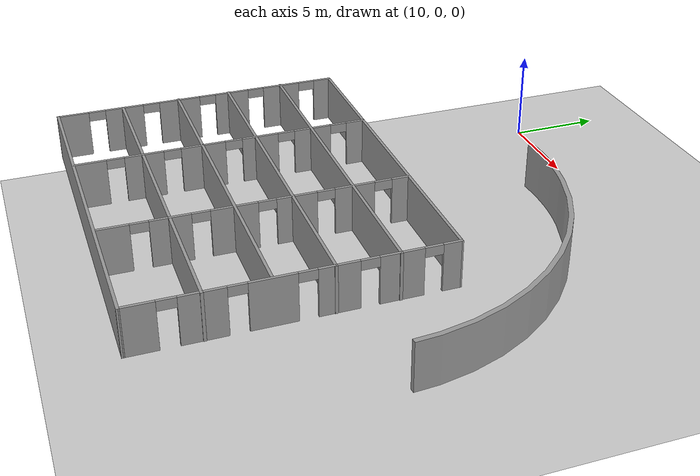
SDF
<sdf version="1.6">
 <world name="default">
  <model name="ground_plane">
   <static>1</static>
   <link name="link">
    <collision name="collision">
     <geometry><plane><normal>0 0 1</normal><size>100 100</size></plane></geometry>
     <surface>
      <contact><collide_bitmask>65535</collide_bitmask></contact>
      <friction><ode><mu>100</mu><mu2>50</mu2></ode></friction>
     </surface>
    </collision>
    <visual name="visual">
     <cast_shadows>0</cast_shadows>
     <geometry><plane><normal>0 0 1</normal><size>100 100</size></plane></geometry>
     <material>
      <script><uri>file://media/materials/scripts/gazebo.material</uri><name>Gazebo/Grey</name></script>
     </material>
    </visual>
   </link>
  </model>
  <model name="5x3_Cubicles_0">
   <pose>18.3768 -19.8709 2.63141 0 -0 0</pose>
   <link name="Wall_0">
    <pose>-9.39351 -0 0 0 -0 -1.57435</pose>
    <visual name="Wall_0_Visual_0">
     <pose>-7.27295 0 1.25 0 -0 0</pose>
     <geometry><box><size>1.03181 0.15 2.5</size></box></geometry>
     <material>
      <script><uri>file://media/materials/scripts/gazebo.material</uri><name>Gazebo/Grey</name></script>
      <ambient>1 1 1 1</ambient>
     </material>
     <meta><layer>0</layer></meta>
    </visual>
    <collision name="Wall_0_Collision_0">
     <geometry><box><size>1.03181 0.15 2.5</size></box></geometry>
     <pose>-7.27295 0 1.25 0 -0 0</pose>
    </collision>
    <visual name="Wall_0_Visual_1">
     <pose>-4.8086 0 1.25 0 -0 0</pose>
     <geometry><box><size>2.09689 0.15 2.5</size></box></geometry>
     <material>
      <script><uri>file://media/materials/scripts/gazebo.material</uri><name>Gazebo/Grey</name></script>
      <ambient>1 1 1 1</ambient>
     </material>
     <meta><layer>0</layer></meta>
    </visual>
    <collision name="Wall_0_Collision_1">
     <geometry><box><size>2.09689 0.15 2.5</size></box></geometry>
     <pose>-4.8086 0 1.25 0 -0 0</pose>
    </collision>
    <visual name="Wall_0_Visual_2">
     <pose>-1.91379 0 1.25 0 -0 0</pose>
     <geometry><box><size>1.89272 0.15 2.5</size></box></geometry>
     <material>
      <script><uri>file://media/materials/scripts/gazebo.material</uri><name>Gazebo/Grey</name></script>
      <ambient>1 1 1 1</ambient>
     </material>
     <meta><layer>0</layer></meta>
    </visual>
    <collision name="Wall_0_Collision_2">
     <geometry><box><size>1.89272 0.15 2.5</size></box></geometry>
     <pose>-1.91379 0 1.25 0 -0 0</pose>
    </collision>
    <visual name="Wall_0_Visual_3">
     <pose>1.06918 0 1.25 0 -0 0</pose>
     <geometry><box><size>2.27323 0.15 2.5</size></box></geometry>
     <material>
      <script><uri>file://media/materials/scripts/gazebo.material</uri><name>Gazebo/Grey</name></script>
      <ambient>1 1 1 1</ambient>
     </material>
     <meta><layer>0</layer></meta>
    </visual>
    <collision name="Wall_0_Collision_3">
     <geometry><box><size>2.27323 0.15 2.5</size></box></geometry>
     <pose>1.06918 0 1.25 0 -0 0</pose>
    </collision>
    <visual name="Wall_0_Visual_4">
     <pose>4.14705 0 1.25 0 -0 0</pose>
     <geometry><box><size>2.0825 0.15 2.5</size></box></geometry>
     <material>
      <script><uri>file://media/materials/scripts/gazebo.material</uri><name>Gazebo/Grey</name></script>
      <ambient>1 1 1 1</ambient>
     </material>
     <meta><layer>0</layer></meta>
    </visual>
    <collision name="Wall_0_Collision_4">
     <geometry><box><size>2.0825 0.15 2.5</size></box></geometry>
     <pose>4.14705 0 1.25 0 -0 0</pose>
    </collision>
    <visual name="Wall_0_Visual_5">
     <pose>6.93858 0 1.25 0 -0 0</pose>
     <geometry><box><size>1.70057 0.15 2.5</size></box></geometry>
     <material>
      <script><uri>file://media/materials/scripts/gazebo.material</uri><name>Gazebo/Grey</name></script>
      <ambient>1 1 1 1</ambient>
     </material>
     <meta><layer>0</layer></meta>
    </visual>
    <collision name="Wall_0_Collision_5">
     <geometry><box><size>1.70057 0.15 2.5</size></box></geometry>
     <pose>6.93858 0 1.25 0 -0 0</pose>
    </collision>
    <visual name="Wall_0_Visual_6">
     <pose>-6.30705 0 2.25 0 -0 0</pose>
     <geometry><box><size>0.9 0.15 0.5</size></box></geometry>
     <material>
      <script><uri>file://media/materials/scripts/gazebo.material</uri><name>Gazebo/Grey</name></script>
      <ambient>1 1 1 1</ambient>
     </material>
     <meta><layer>0</layer></meta>
    </visual>
    <collision name="Wall_0_Collision_6">
     <geometry><box><size>0.9 0.15 0.5</size></box></geometry>
     <pose>-6.30705 0 2.25 0 -0 0</pose>
    </collision>
    <visual name="Wall_0_Visual_7">
     <pose>-3.31016 0 2.25 0 -0 0</pose>
     <geometry><box><size>0.9 0.15 0.5</size></box></geometry>
     <material>
      <script><uri>file://media/materials/scripts/gazebo.material</uri><name>Gazebo/Grey</name></script>
      <ambient>1 1 1 1</ambient>
     </material>
     <meta><layer>0</layer></meta>
    </visual>
    <collision name="Wall_0_Collision_7">
     <geometry><box><size>0.9 0.15 0.5</size></box></geometry>
     <pose>-3.31016 0 2.25 0 -0 0</pose>
    </collision>
    <visual name="Wall_0_Visual_8">
     <pose>-0.517433 0 2.25 0 -0 0</pose>
     <geometry><box><size>0.9 0.15 0.5</size></box></geometry>
     <material>
      <script><uri>file://media/materials/scripts/gazebo.material</uri><name>Gazebo/Grey</name></script>
      <ambient>1 1 1 1</ambient>
     </material>
     <meta><layer>0</layer></meta>
    </visual>
    <collision name="Wall_0_Collision_8">
     <geometry><box><size>0.9 0.15 0.5</size></box></geometry>
     <pose>-0.517433 0 2.25 0 -0 0</pose>
    </collision>
    <visual name="Wall_0_Visual_9">
     <pose>2.6558 0 2.25 0 -0 0</pose>
     <geometry><box><size>0.9 0.15 0.5</size></box></geometry>
     <material>
      <script><uri>file://media/materials/scripts/gazebo.material</uri><name>Gazebo/Grey</name></script>
      <ambient>1 1 1 1</ambient>
     </material>
     <meta><layer>0</layer></meta>
    </visual>
    <collision name="Wall_0_Collision_9">
     <geometry><box><size>0.9 0.15 0.5</size></box></geometry>
     <pose>2.6558 0 2.25 0 -0 0</pose>
    </collision>
    <visual name="Wall_0_Visual_10">
     <pose>5.63829 0 2.25 0 -0 0</pose>
     <geometry><box><size>0.9 0.15 0.5</size></box></geometry>
     <material>
      <script><uri>file://media/materials/scripts/gazebo.material</uri><name>Gazebo/Grey</name></script>
      <ambient>1 1 1 1</ambient>
     </material>
     <meta><layer>0</layer></meta>
    </visual>
    <collision name="Wall_0_Collision_10">
     <geometry><box><size>0.9 0.15 0.5</size></box></geometry>
     <pose>5.63829 0 2.25 0 -0 0</pose>
    </collision>
   </link>
   <link name="Wall_10">
    <collision name="Wall_10_Collision">
     <geometry><box><size>19 0.15 2.5</size></box></geometry>
     <pose>0 0 1.25 0 -0 0</pose>
    </collision>
    <visual name="Wall_10_Visual">
     <pose>0 0 1.25 0 -0 0</pose>
     <geometry><box><size>19 0.15 2.5</size></box></geometry>
     <material>
      <script><uri>file://media/materials/scripts/gazebo.material</uri><name>Gazebo/Grey</name></script>
      <ambient>1 1 1 1</ambient>
     </material>
     <meta><layer>0</layer></meta>
    </visual>
    <pose>-0 1.73972 0 0 -0 0</pose>
   </link>
   <link name="Wall_12">
    <collision name="Wall_12_Collision">
     <geometry><box><size>19 0.15 2.5</size></box></geometry>
     <pose>0 0 1.25 0 -0 0</pose>
    </collision>
    <visual name="Wall_12_Visual">
     <pose>0 0 1.25 0 -0 0</pose>
     <geometry><box><size>19 0.15 2.5</size></box></geometry>
     <material>
      <script><uri>file://media/materials/scripts/gazebo.material</uri><name>Gazebo/Grey</name></script>
      <ambient>1 1 1 1</ambient>
     </material>
     <meta><layer>0</layer></meta>
    </visual>
    <pose>0.002757 4.78648 0 0 -0 0</pose>
   </link>
   <link name="Wall_14">
    <pose>3.03244 -0.038205 0 0 -0 -1.57332</pose>
    <visual name="Wall_14_Visual_0">
     <pose>-7.27661 0 1.25 0 -0 0</pose>
     <geometry><box><size>0.887786 0.15 2.5</size></box></geometry>
     <material>
      <script><uri>file://media/materials/scripts/gazebo.material</uri><name>Gazebo/Grey</name></script>
      <ambient>1 1 1 1</ambient>
     </material>
     <meta><layer>0</layer></meta>
    </visual>
    <collision name="Wall_14_Collision_0">
     <geometry><box><size>0.887786 0.15 2.5</size></box></geometry>
     <pose>-7.27661 0 1.25 0 -0 0</pose>
    </collision>
    <visual name="Wall_14_Visual_1">
     <pose>-4.91212 0 1.25 0 -0 0</pose>
     <geometry><box><size>2.04118 0.15 2.5</size></box></geometry>
     <material>
      <script><uri>file://media/materials/scripts/gazebo.material</uri><name>Gazebo/Grey</name></script>
      <ambient>1 1 1 1</ambient>
     </material>
     <meta><layer>0</layer></meta>
    </visual>
    <collision name="Wall_14_Collision_1">
     <geometry><box><size>2.04118 0.15 2.5</size></box></geometry>
     <pose>-4.91212 0 1.25 0 -0 0</pose>
    </collision>
    <visual name="Wall_14_Visual_2">
     <pose>-1.97726 0 1.25 0 -0 0</pose>
     <geometry><box><size>2.02854 0.15 2.5</size></box></geometry>
     <material>
      <script><uri>file://media/materials/scripts/gazebo.material</uri><name>Gazebo/Grey</name></script>
      <ambient>1 1 1 1</ambient>
     </material>
     <meta><layer>0</layer></meta>
    </visual>
    <collision name="Wall_14_Collision_2">
     <geometry><box><size>2.02854 0.15 2.5</size></box></geometry>
     <pose>-1.97726 0 1.25 0 -0 0</pose>
    </collision>
    <visual name="Wall_14_Visual_3">
     <pose>1.09454 0 1.25 0 -0 0</pose>
     <geometry><box><size>2.31505 0.15 2.5</size></box></geometry>
     <material>
      <script><uri>file://media/materials/scripts/gazebo.material</uri><name>Gazebo/Grey</name></script>
      <ambient>1 1 1 1</ambient>
     </material>
     <meta><layer>0</layer></meta>
    </visual>
    <collision name="Wall_14_Collision_3">
     <geometry><box><size>2.31505 0.15 2.5</size></box></geometry>
     <pose>1.09454 0 1.25 0 -0 0</pose>
    </collision>
    <visual name="Wall_14_Visual_4">
     <pose>4.15071 0 1.25 0 -0 0</pose>
     <geometry><box><size>1.9973 0.15 2.5</size></box></geometry>
     <material>
      <script><uri>file://media/materials/scripts/gazebo.material</uri><name>Gazebo/Grey</name></script>
      <ambient>1 1 1 1</ambient>
     </material>
     <meta><layer>0</layer></meta>
    </visual>
    <collision name="Wall_14_Collision_4">
     <geometry><box><size>1.9973 0.15 2.5</size></box></geometry>
     <pose>4.15071 0 1.25 0 -0 0</pose>
    </collision>
    <visual name="Wall_14_Visual_5">
     <pose>6.88493 0 1.25 0 -0 0</pose>
     <geometry><box><size>1.67114 0.15 2.5</size></box></geometry>
     <material>
      <script><uri>file://media/materials/scripts/gazebo.material</uri><name>Gazebo/Grey</name></script>
      <ambient>1 1 1 1</ambient>
     </material>
     <meta><layer>0</layer></meta>
    </visual>
    <collision name="Wall_14_Collision_5">
     <geometry><box><size>1.67114 0.15 2.5</size></box></geometry>
     <pose>6.88493 0 1.25 0 -0 0</pose>
    </collision>
    <visual name="Wall_14_Visual_6">
     <pose>-6.38271 0 2.25 0 -0 0</pose>
     <geometry><box><size>0.9 0.15 0.5</size></box></geometry>
     <material>
      <script><uri>file://media/materials/scripts/gazebo.material</uri><name>Gazebo/Grey</name></script>
      <ambient>1 1 1 1</ambient>
     </material>
     <meta><layer>0</layer></meta>
    </visual>
    <collision name="Wall_14_Collision_6">
     <geometry><box><size>0.9 0.15 0.5</size></box></geometry>
     <pose>-6.38271 0 2.25 0 -0 0</pose>
    </collision>
    <visual name="Wall_14_Visual_7">
     <pose>-3.44153 0 2.25 0 -0 0</pose>
     <geometry><box><size>0.9 0.15 0.5</size></box></geometry>
     <material>
      <script><uri>file://media/materials/scripts/gazebo.material</uri><name>Gazebo/Grey</name></script>
      <ambient>1 1 1 1</ambient>
     </material>
     <meta><layer>0</layer></meta>
    </visual>
    <collision name="Wall_14_Collision_7">
     <geometry><box><size>0.9 0.15 0.5</size></box></geometry>
     <pose>-3.44153 0 2.25 0 -0 0</pose>
    </collision>
    <visual name="Wall_14_Visual_8">
     <pose>-0.512986 0 2.25 0 -0 0</pose>
     <geometry><box><size>0.9 0.15 0.5</size></box></geometry>
     <material>
      <script><uri>file://media/materials/scripts/gazebo.material</uri><name>Gazebo/Grey</name></script>
      <ambient>1 1 1 1</ambient>
     </material>
     <meta><layer>0</layer></meta>
    </visual>
    <collision name="Wall_14_Collision_8">
     <geometry><box><size>0.9 0.15 0.5</size></box></geometry>
     <pose>-0.512986 0 2.25 0 -0 0</pose>
    </collision>
    <visual name="Wall_14_Visual_9">
     <pose>2.70206 0 2.25 0 -0 0</pose>
     <geometry><box><size>0.9 0.15 0.5</size></box></geometry>
     <material>
      <script><uri>file://media/materials/scripts/gazebo.material</uri><name>Gazebo/Grey</name></script>
      <ambient>1 1 1 1</ambient>
     </material>
     <meta><layer>0</layer></meta>
    </visual>
    <collision name="Wall_14_Collision_9">
     <geometry><box><size>0.9 0.15 0.5</size></box></geometry>
     <pose>2.70206 0 2.25 0 -0 0</pose>
    </collision>
    <visual name="Wall_14_Visual_10">
     <pose>5.59936 0 2.25 0 -0 0</pose>
     <geometry><box><size>0.9 0.15 0.5</size></box></geometry>
     <material>
      <script><uri>file://media/materials/scripts/gazebo.material</uri><name>Gazebo/Grey</name></script>
      <ambient>1 1 1 1</ambient>
     </material>
     <meta><layer>0</layer></meta>
    </visual>
    <collision name="Wall_14_Collision_10">
     <geometry><box><size>0.9 0.15 0.5</size></box></geometry>
     <pose>5.59936 0 2.25 0 -0 0</pose>
    </collision>
   </link>
   <link name="Wall_16">
    <pose>-3.57321 -0.011645 0 0 -0 -1.5708</pose>
    <visual name="Wall_16_Visual_0">
     <pose>-7.25015 0 1.25 0 -0 0</pose>
     <geometry><box><size>0.999697 0.15 2.5</size></box></geometry>
     <material>
      <script><uri>file://media/materials/scripts/gazebo.material</uri><name>Gazebo/Grey</name></script>
      <ambient>1 1 1 1</ambient>
     </material>
     <meta><layer>0</layer></meta>
    </visual>
    <collision name="Wall_16_Collision_0">
     <geometry><box><size>0.999697 0.15 2.5</size></box></geometry>
     <pose>-7.25015 0 1.25 0 -0 0</pose>
    </collision>
    <visual name="Wall_16_Visual_1">
     <pose>-4.84832 0 1.25 0 -0 0</pose>
     <geometry><box><size>2.00397 0.15 2.5</size></box></geometry>
     <material>
      <script><uri>file://media/materials/scripts/gazebo.material</uri><name>Gazebo/Grey</name></script>
      <ambient>1 1 1 1</ambient>
     </material>
     <meta><layer>0</layer></meta>
    </visual>
    <collision name="Wall_16_Collision_1">
     <geometry><box><size>2.00397 0.15 2.5</size></box></geometry>
     <pose>-4.84832 0 1.25 0 -0 0</pose>
    </collision>
    <visual name="Wall_16_Visual_2">
     <pose>-1.97337 0 1.25 0 -0 0</pose>
     <geometry><box><size>1.94594 0.15 2.5</size></box></geometry>
     <material>
      <script><uri>file://media/materials/scripts/gazebo.material</uri><name>Gazebo/Grey</name></script>
      <ambient>1 1 1 1</ambient>
     </material>
     <meta><layer>0</layer></meta>
    </visual>
    <collision name="Wall_16_Collision_2">
     <geometry><box><size>1.94594 0.15 2.5</size></box></geometry>
     <pose>-1.97337 0 1.25 0 -0 0</pose>
    </collision>
    <visual name="Wall_16_Visual_3">
     <pose>1.06765 0 1.25 0 -0 0</pose>
     <geometry><box><size>2.3361 0.15 2.5</size></box></geometry>
     <material>
      <script><uri>file://media/materials/scripts/gazebo.material</uri><name>Gazebo/Grey</name></script>
      <ambient>1 1 1 1</ambient>
     </material>
     <meta><layer>0</layer></meta>
    </visual>
    <collision name="Wall_16_Collision_3">
     <geometry><box><size>2.3361 0.15 2.5</size></box></geometry>
     <pose>1.06765 0 1.25 0 -0 0</pose>
    </collision>
    <visual name="Wall_16_Visual_4">
     <pose>4.14512 0 1.25 0 -0 0</pose>
     <geometry><box><size>2.01884 0.15 2.5</size></box></geometry>
     <material>
      <script><uri>file://media/materials/scripts/gazebo.material</uri><name>Gazebo/Grey</name></script>
      <ambient>1 1 1 1</ambient>
     </material>
     <meta><layer>0</layer></meta>
    </visual>
    <collision name="Wall_16_Collision_4">
     <geometry><box><size>2.01884 0.15 2.5</size></box></geometry>
     <pose>4.14512 0 1.25 0 -0 0</pose>
    </collision>
    <visual name="Wall_16_Visual_5">
     <pose>6.90227 0 1.25 0 -0 0</pose>
     <geometry><box><size>1.69546 0.15 2.5</size></box></geometry>
     <material>
      <script><uri>file://media/materials/scripts/gazebo.material</uri><name>Gazebo/Grey</name></script>
      <ambient>1 1 1 1</ambient>
     </material>
     <meta><layer>0</layer></meta>
    </visual>
    <collision name="Wall_16_Collision_5">
     <geometry><box><size>1.69546 0.15 2.5</size></box></geometry>
     <pose>6.90227 0 1.25 0 -0 0</pose>
    </collision>
    <visual name="Wall_16_Visual_6">
     <pose>-6.3003 0 2.25 0 -0 0</pose>
     <geometry><box><size>0.9 0.15 0.5</size></box></geometry>
     <material>
      <script><uri>file://media/materials/scripts/gazebo.material</uri><name>Gazebo/Grey</name></script>
      <ambient>1 1 1 1</ambient>
     </material>
     <meta><layer>0</layer></meta>
    </visual>
    <collision name="Wall_16_Collision_6">
     <geometry><box><size>0.9 0.15 0.5</size></box></geometry>
     <pose>-6.3003 0 2.25 0 -0 0</pose>
    </collision>
    <visual name="Wall_16_Visual_7">
     <pose>-3.39634 0 2.25 0 -0 0</pose>
     <geometry><box><size>0.9 0.15 0.5</size></box></geometry>
     <material>
      <script><uri>file://media/materials/scripts/gazebo.material</uri><name>Gazebo/Grey</name></script>
      <ambient>1 1 1 1</ambient>
     </material>
     <meta><layer>0</layer></meta>
    </visual>
    <collision name="Wall_16_Collision_7">
     <geometry><box><size>0.9 0.15 0.5</size></box></geometry>
     <pose>-3.39634 0 2.25 0 -0 0</pose>
    </collision>
    <visual name="Wall_16_Visual_8">
     <pose>-0.5504 0 2.25 0 -0 0</pose>
     <geometry><box><size>0.9 0.15 0.5</size></box></geometry>
     <material>
      <script><uri>file://media/materials/scripts/gazebo.material</uri><name>Gazebo/Grey</name></script>
      <ambient>1 1 1 1</ambient>
     </material>
     <meta><layer>0</layer></meta>
    </visual>
    <collision name="Wall_16_Collision_8">
     <geometry><box><size>0.9 0.15 0.5</size></box></geometry>
     <pose>-0.5504 0 2.25 0 -0 0</pose>
    </collision>
    <visual name="Wall_16_Visual_9">
     <pose>2.6857 0 2.25 0 -0 0</pose>
     <geometry><box><size>0.9 0.15 0.5</size></box></geometry>
     <material>
      <script><uri>file://media/materials/scripts/gazebo.material</uri><name>Gazebo/Grey</name></script>
      <ambient>1 1 1 1</ambient>
     </material>
     <meta><layer>0</layer></meta>
    </visual>
    <collision name="Wall_16_Collision_9">
     <geometry><box><size>0.9 0.15 0.5</size></box></geometry>
     <pose>2.6857 0 2.25 0 -0 0</pose>
    </collision>
    <visual name="Wall_16_Visual_10">
     <pose>5.60454 0 2.25 0 -0 0</pose>
     <geometry><box><size>0.9 0.15 0.5</size></box></geometry>
     <material>
      <script><uri>file://media/materials/scripts/gazebo.material</uri><name>Gazebo/Grey</name></script>
      <ambient>1 1 1 1</ambient>
     </material>
     <meta><layer>0</layer></meta>
    </visual>
    <collision name="Wall_16_Collision_10">
     <geometry><box><size>0.9 0.15 0.5</size></box></geometry>
     <pose>5.60454 0 2.25 0 -0 0</pose>
    </collision>
   </link>
   <link name="Wall_2">
    <collision name="Wall_2_Collision">
     <geometry><box><size>19 0.15 2.5</size></box></geometry>
     <pose>0 0 1.25 0 -0 0</pose>
    </collision>
    <visual name="Wall_2_Visual">
     <pose>0 0 1.25 0 -0 0</pose>
     <geometry><box><size>19 0.15 2.5</size></box></geometry>
     <material>
      <script><uri>file://media/materials/scripts/gazebo.material</uri><name>Gazebo/Grey</name></script>
      <ambient>1 1 1 1</ambient>
     </material>
     <meta><layer>0</layer></meta>
    </visual>
    <pose>0.004043 -7.71378 0 0 -0 0</pose>
   </link>
   <link name="Wall_3">
    <pose>9.40486 -0.007207 0 0 -0 1.57394</pose>
    <visual name="Wall_3_Visual_0">
     <pose>-6.96276 0 1.25 0 -0 0</pose>
     <geometry><box><size>1.63776 0.15 2.5</size></box></geometry>
     <material>
      <script><uri>file://media/materials/scripts/gazebo.material</uri><name>Gazebo/Grey</name></script>
      <ambient>1 1 1 1</ambient>
     </material>
     <meta><layer>0</layer></meta>
    </visual>
    <collision name="Wall_3_Collision_0">
     <geometry><box><size>1.63776 0.15 2.5</size></box></geometry>
     <pose>-6.96276 0 1.25 0 -0 0</pose>
    </collision>
    <visual name="Wall_3_Visual_1">
     <pose>-4.17068 0 1.25 0 -0 0</pose>
     <geometry><box><size>2.14639 0.15 2.5</size></box></geometry>
     <material>
      <script><uri>file://media/materials/scripts/gazebo.material</uri><name>Gazebo/Grey</name></script>
      <ambient>1 1 1 1</ambient>
     </material>
     <meta><layer>0</layer></meta>
    </visual>
    <collision name="Wall_3_Collision_1">
     <geometry><box><size>2.14639 0.15 2.5</size></box></geometry>
     <pose>-4.17068 0 1.25 0 -0 0</pose>
    </collision>
    <visual name="Wall_3_Visual_2">
     <pose>-1.08256 0 1.25 0 -0 0</pose>
     <geometry><box><size>2.22987 0.15 2.5</size></box></geometry>
     <material>
      <script><uri>file://media/materials/scripts/gazebo.material</uri><name>Gazebo/Grey</name></script>
      <ambient>1 1 1 1</ambient>
     </material>
     <meta><layer>0</layer></meta>
    </visual>
    <collision name="Wall_3_Collision_2">
     <geometry><box><size>2.22987 0.15 2.5</size></box></geometry>
     <pose>-1.08256 0 1.25 0 -0 0</pose>
    </collision>
    <visual name="Wall_3_Visual_3">
     <pose>1.90922 0 1.25 0 -0 0</pose>
     <geometry><box><size>1.95369 0.15 2.5</size></box></geometry>
     <material>
      <script><uri>file://media/materials/scripts/gazebo.material</uri><name>Gazebo/Grey</name></script>
      <ambient>1 1 1 1</ambient>
     </material>
     <meta><layer>0</layer></meta>
    </visual>
    <collision name="Wall_3_Collision_3">
     <geometry><box><size>1.95369 0.15 2.5</size></box></geometry>
     <pose>1.90922 0 1.25 0 -0 0</pose>
    </collision>
    <visual name="Wall_3_Visual_4">
     <pose>4.85258 0 1.25 0 -0 0</pose>
     <geometry><box><size>2.13302 0.15 2.5</size></box></geometry>
     <material>
      <script><uri>file://media/materials/scripts/gazebo.material</uri><name>Gazebo/Grey</name></script>
      <ambient>1 1 1 1</ambient>
     </material>
     <meta><layer>0</layer></meta>
    </visual>
    <collision name="Wall_3_Collision_4">
     <geometry><box><size>2.13302 0.15 2.5</size></box></geometry>
     <pose>4.85258 0 1.25 0 -0 0</pose>
    </collision>
    <visual name="Wall_3_Visual_5">
     <pose>7.30037 0 1.25 0 -0 0</pose>
     <geometry><box><size>0.962557 0.15 2.5</size></box></geometry>
     <material>
      <script><uri>file://media/materials/scripts/gazebo.material</uri><name>Gazebo/Grey</name></script>
      <ambient>1 1 1 1</ambient>
     </material>
     <meta><layer>0</layer></meta>
    </visual>
    <collision name="Wall_3_Collision_5">
     <geometry><box><size>0.962557 0.15 2.5</size></box></geometry>
     <pose>7.30037 0 1.25 0 -0 0</pose>
    </collision>
    <visual name="Wall_3_Visual_6">
     <pose>-5.69388 0 2.25 0 -0 0</pose>
     <geometry><box><size>0.9 0.15 0.5</size></box></geometry>
     <material>
      <script><uri>file://media/materials/scripts/gazebo.material</uri><name>Gazebo/Grey</name></script>
      <ambient>1 1 1 1</ambient>
     </material>
     <meta><layer>0</layer></meta>
    </visual>
    <collision name="Wall_3_Collision_6">
     <geometry><box><size>0.9 0.15 0.5</size></box></geometry>
     <pose>-5.69388 0 2.25 0 -0 0</pose>
    </collision>
    <visual name="Wall_3_Visual_7">
     <pose>-2.64749 0 2.25 0 -0 0</pose>
     <geometry><box><size>0.9 0.15 0.5</size></box></geometry>
     <material>
      <script><uri>file://media/materials/scripts/gazebo.material</uri><name>Gazebo/Grey</name></script>
      <ambient>1 1 1 1</ambient>
     </material>
     <meta><layer>0</layer></meta>
    </visual>
    <collision name="Wall_3_Collision_7">
     <geometry><box><size>0.9 0.15 0.5</size></box></geometry>
     <pose>-2.64749 0 2.25 0 -0 0</pose>
    </collision>
    <visual name="Wall_3_Visual_8">
     <pose>0.482376 0 2.25 0 -0 0</pose>
     <geometry><box><size>0.9 0.15 0.5</size></box></geometry>
     <material>
      <script><uri>file://media/materials/scripts/gazebo.material</uri><name>Gazebo/Grey</name></script>
      <ambient>1 1 1 1</ambient>
     </material>
     <meta><layer>0</layer></meta>
    </visual>
    <collision name="Wall_3_Collision_8">
     <geometry><box><size>0.9 0.15 0.5</size></box></geometry>
     <pose>0.482376 0 2.25 0 -0 0</pose>
    </collision>
    <visual name="Wall_3_Visual_9">
     <pose>3.33607 0 2.25 0 -0 0</pose>
     <geometry><box><size>0.9 0.15 0.5</size></box></geometry>
     <material>
      <script><uri>file://media/materials/scripts/gazebo.material</uri><name>Gazebo/Grey</name></script>
      <ambient>1 1 1 1</ambient>
     </material>
     <meta><layer>0</layer></meta>
    </visual>
    <collision name="Wall_3_Collision_9">
     <geometry><box><size>0.9 0.15 0.5</size></box></geometry>
     <pose>3.33607 0 2.25 0 -0 0</pose>
    </collision>
    <visual name="Wall_3_Visual_10">
     <pose>6.36909 0 2.25 0 -0 0</pose>
     <geometry><box><size>0.9 0.15 0.5</size></box></geometry>
     <material>
      <script><uri>file://media/materials/scripts/gazebo.material</uri><name>Gazebo/Grey</name></script>
      <ambient>1 1 1 1</ambient>
     </material>
     <meta><layer>0</layer></meta>
    </visual>
    <collision name="Wall_3_Collision_10">
     <geometry><box><size>0.9 0.15 0.5</size></box></geometry>
     <pose>6.36909 0 2.25 0 -0 0</pose>
    </collision>
   </link>
   <link name="Wall_4">
    <collision name="Wall_4_Collision">
     <geometry><box><size>18.8967 0.15 2.5</size></box></geometry>
     <pose>0 0 1.25 0 -0 0</pose>
    </collision>
    <visual name="Wall_4_Visual">
     <pose>0 0 1.25 0 -0 0</pose>
     <geometry><box><size>18.8967 0.15 2.5</size></box></geometry>
     <material>
      <script><uri>file://media/materials/scripts/gazebo.material</uri><name>Gazebo/Grey</name></script>
      <ambient>1 1 1 1</ambient>
     </material>
     <meta><layer>0</layer></meta>
    </visual>
    <pose>0.0073 7.70657 0 0 -0 3.14082</pose>
   </link>
   <link name="Wall_6">
    <collision name="Wall_6_Collision">
     <geometry><box><size>19 0.15 2.5</size></box></geometry>
     <pose>0 0 1.25 0 -0 0</pose>
    </collision>
    <visual name="Wall_6_Visual">
     <pose>0 0 1.25 0 -0 0</pose>
     <geometry><box><size>19 0.15 2.5</size></box></geometry>
     <material>
      <script><uri>file://media/materials/scripts/gazebo.material</uri><name>Gazebo/Grey</name></script>
      <ambient>1 1 1 1</ambient>
     </material>
     <meta><layer>0</layer></meta>
    </visual>
    <pose>0.024186 -4.2101 0 0 -0 0</pose>
   </link>
   <link name="Wall_8">
    <collision name="Wall_8_Collision">
     <geometry><box><size>19 0.15 2.5</size></box></geometry>
     <pose>0 0 1.25 0 -0 0</pose>
    </collision>
    <visual name="Wall_8_Visual">
     <pose>0 0 1.25 0 -0 0</pose>
     <geometry><box><size>19 0.15 2.5</size></box></geometry>
     <material>
      <script><uri>file://media/materials/scripts/gazebo.material</uri><name>Gazebo/Grey</name></script>
      <ambient>1 1 1 1</ambient>
     </material>
     <meta><layer>0</layer></meta>
    </visual>
    <pose>-0.024187 -1.11426 0 0 -0 0</pose>
   </link>
   <static>1</static>
  </model>
  <model name="Curved_wall_1.25m_clone">
   <link name="link_0">
    <inertial>
     <mass>1</mass>
     <inertia>
      <ixx>0.166667</ixx>
      <ixy>0</ixy>
      <ixz>0</ixz>
      <iyy>0.166667</iyy>
      <iyz>0</iyz>
      <izz>0.166667</izz>
     </inertia>
    </inertial>
    <pose>-4.4e-05 -6e-06 0 0 -0 0</pose>
    <visual name="visual">
     <geometry><mesh><uri>meshes/curved wall.dae</uri><scale>1 1 1</scale></mesh></geometry>
     <material>
      <lighting>1</lighting>
      <script><uri>file://media/materials/scripts/gazebo.material</uri><name>Gazebo/Grey</name></script>
      <shader type="pixel"/>
     </material>
    </visual>
    <collision name="collision">
     <geometry><mesh><uri>meshes/curved wall.dae</uri><scale>1 1 1</scale></mesh></geometry>
     <surface>
      <friction>
       <ode><mu>1</mu><mu2>1</mu2><fdir1>0 0 0</fdir1><slip1>0</slip1><slip2>0</slip2></ode>
       <torsional>
        <coefficient>1</coefficient>
        <patch_radius>0</patch_radius>
        <surface_radius>0</surface_radius>
        <use_patch_radius>1</use_patch_radius>
        <ode><slip>0</slip></ode>
       </torsional>
      </friction>
      <bounce><restitution_coefficient>0</restitution_coefficient><threshold>1e+06</threshold></bounce>
      <contact>
       <collide_without_contact>0</collide_without_contact>
       <collide_without_contact_bitmask>1</collide_without_contact_bitmask>
       <collide_bitmask>1</collide_bitmask>
       <ode>
        <soft_cfm>0</soft_cfm>
        <soft_erp>0.2</soft_erp>
        <kp>1e+13</kp>
        <kd>1</kd>
        <max_vel>0.01</max_vel>
        <min_depth>0</min_depth>
       </ode>
       <bullet>
        <split_impulse>1</split_impulse>
        <split_impulse_penetration_threshold>-0.01</split_impulse_penetration_threshold>
        <soft_cfm>0</soft_cfm>
        <soft_erp>0.2</soft_erp>
        <kp>1e+13</kp>
        <kd>1</kd>
       </bullet>
      </contact>
     </surface>
    </collision>
   </link>
   <static>1</static>
   <pose>28.8558 -9.0666 3.91891 2.9e-05 -2.5e-05 0.071829</pose>
  </model>
 </world>
</sdf>
